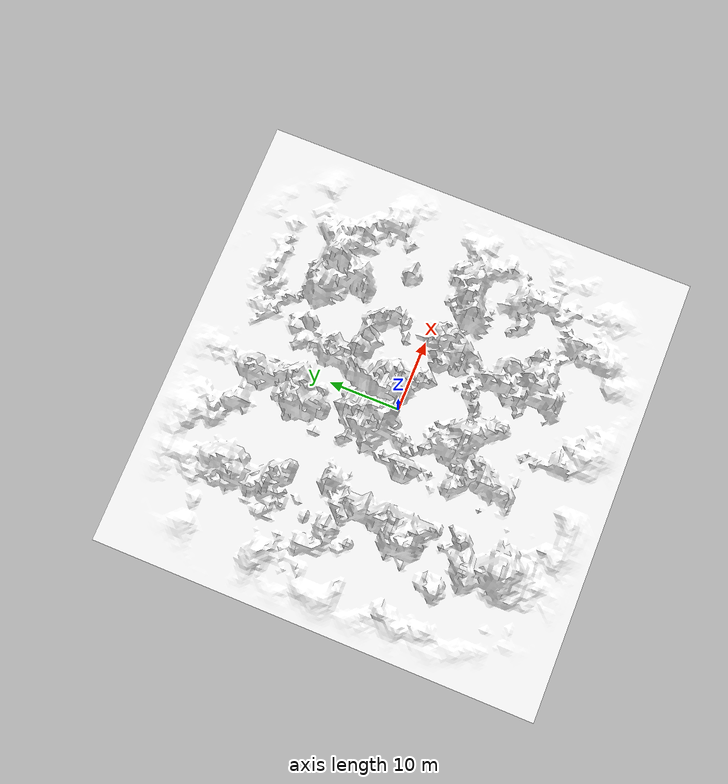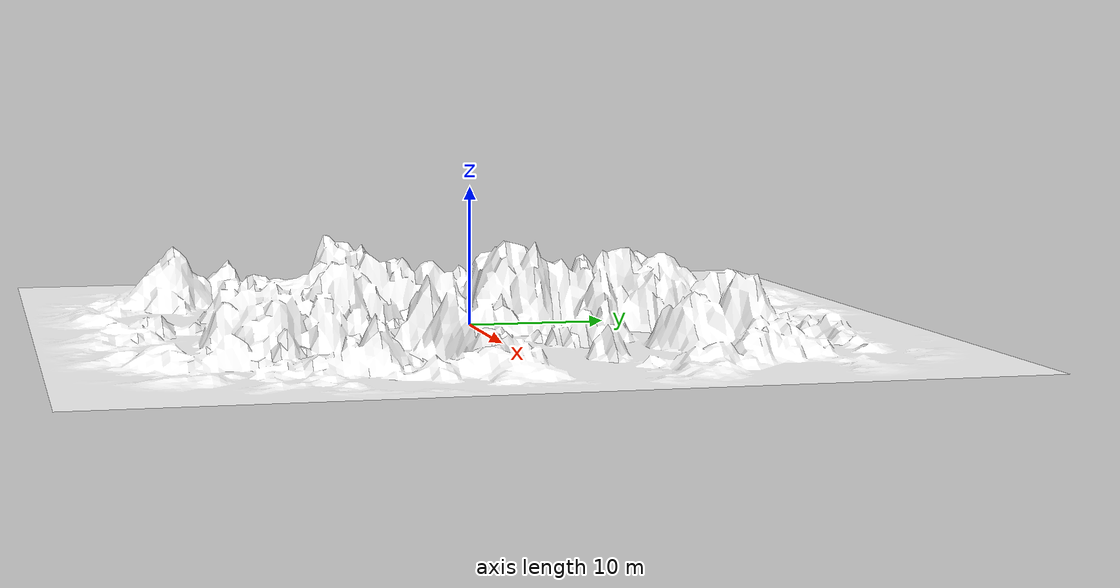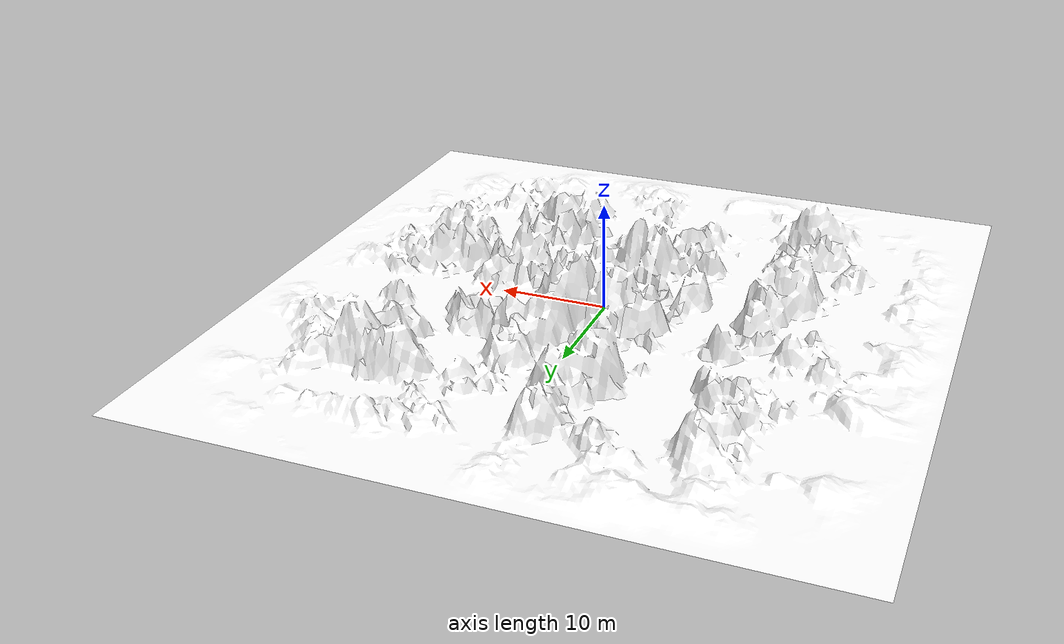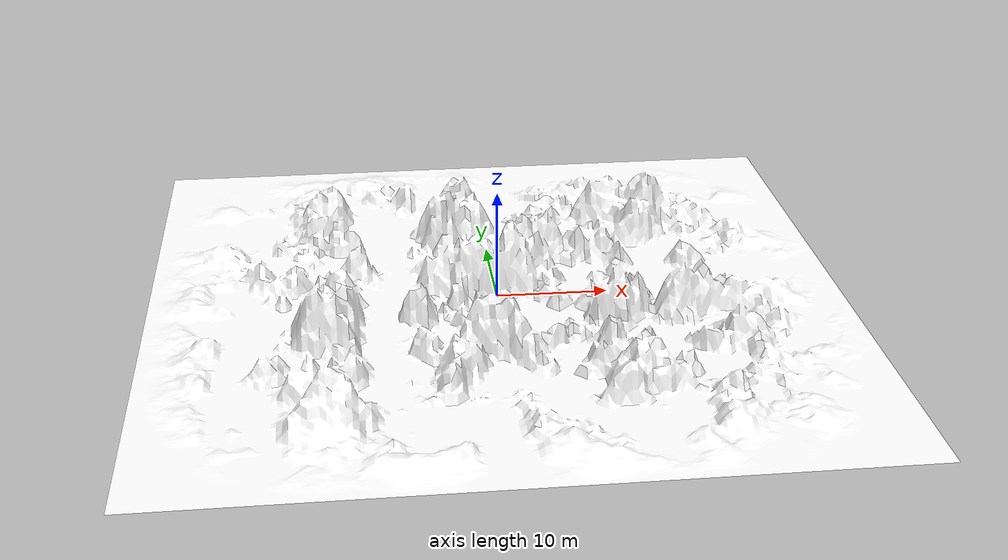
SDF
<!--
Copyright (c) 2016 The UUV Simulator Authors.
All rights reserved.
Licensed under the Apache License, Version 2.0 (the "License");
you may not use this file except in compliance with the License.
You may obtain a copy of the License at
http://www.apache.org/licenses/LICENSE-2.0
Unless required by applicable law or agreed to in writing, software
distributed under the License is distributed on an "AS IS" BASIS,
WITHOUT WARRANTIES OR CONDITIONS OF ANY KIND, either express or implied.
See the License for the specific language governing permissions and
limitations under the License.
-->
<?xml version="1.0" ?>
<sdf version="1.5">
  <model name="sand_heightmap">
    <static>true</static>

    <link name="link">

      <collision name="ground">
        <pose>0 0 0 0 0 0</pose>
        <geometry>
          <mesh>
            <!-- Original scale was: 0.5 0.5 0.25
                 This is 1/4 size in X/Y:
                 0.5 * 0.25 = 0.125 -->
            <scale>0.125 0.125 0.25</scale>
            <uri>model://sand_heightmap/meshes/sandseabed.dae</uri>
          </mesh>
        </geometry>
      </collision>

      <visual name="ground_sand">
        <cast_shadows>true</cast_shadows>
        <pose>0 0 0 0 0 0</pose>
        <geometry>
          <mesh>
            <!-- Same scale as collision -->
            <scale>0.125 0.125 0.25</scale>
            <uri>model://sand_heightmap/meshes/sandseabed.dae</uri>
          </mesh>
        </geometry>

        <material>
          <ambient>1 1 1 1</ambient>
          <diffuse>1 1 1 1</diffuse>
          <specular>0.1 0.1 0.1 0.1</specular>
          <pbr>
            <metal>
              <albedo_map>materials/soil_sand_0045_01.jpg</albedo_map>
              <normal_map>materials/flat_normal.png</normal_map>
              <roughness>0.9</roughness>
              <metalness>0.01</metalness>
            </metal>
          </pbr>
        </material>
      </visual>

    </link>
  </model>
</sdf>
